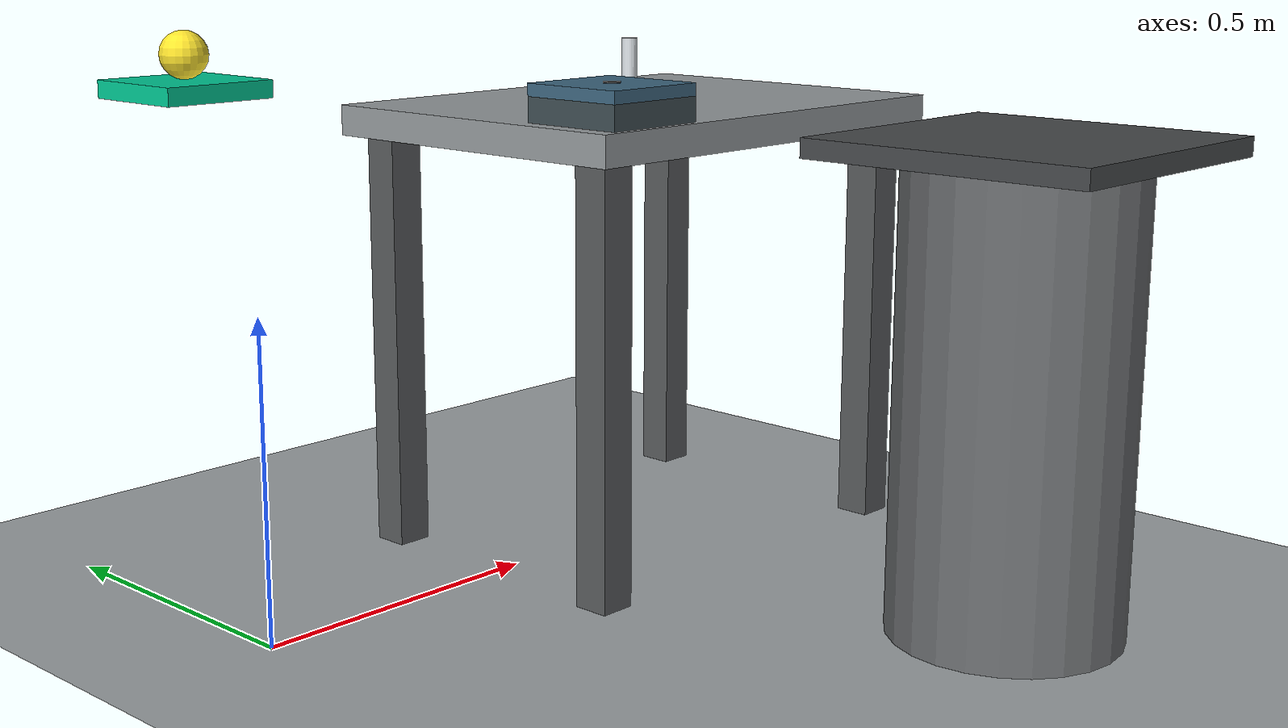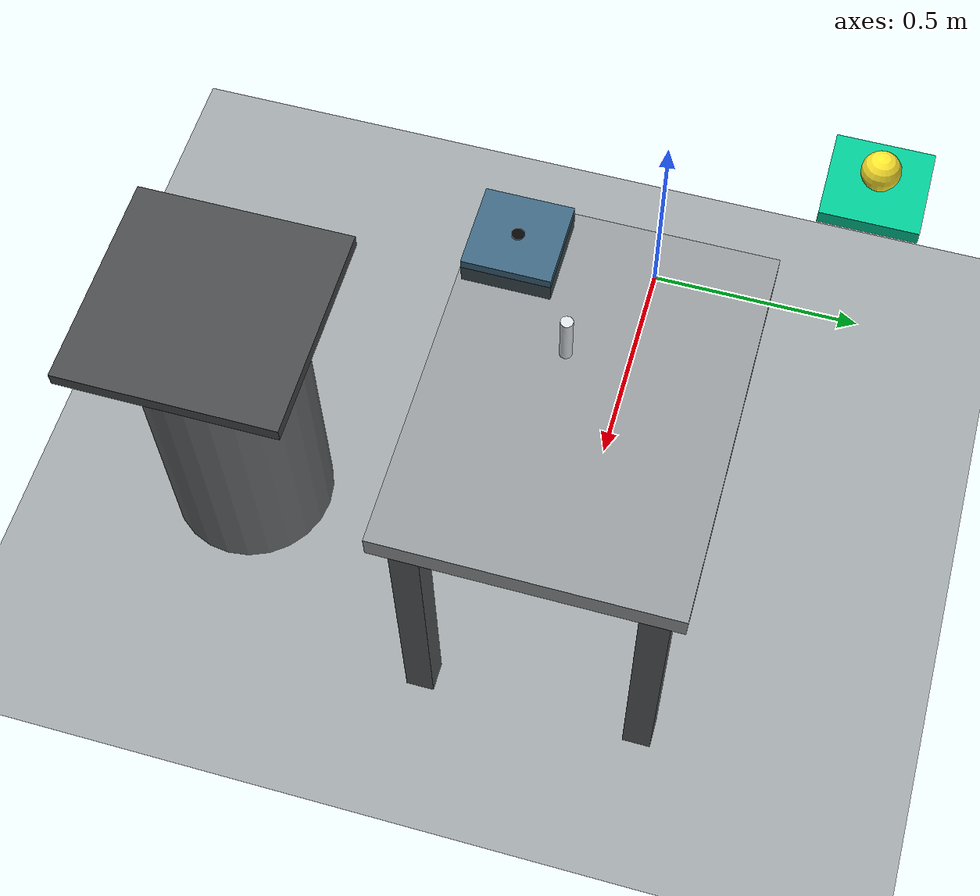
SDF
<?xml version="1.0"?>
<sdf version="1.9">
  <world name="peg_in_hole_contact_validation_world">
    <physics name="1ms" type="ignored">
      <max_step_size>0.001</max_step_size>
      <real_time_factor>1.0</real_time_factor>
      <real_time_update_rate>1000</real_time_update_rate>
    </physics>

    <plugin name="gz::sim::systems::Physics" filename="ignition-gazebo-physics-system"/>
    <plugin name="gz::sim::systems::UserCommands" filename="ignition-gazebo-user-commands-system"/>
    <plugin name="gz::sim::systems::SceneBroadcaster" filename="ignition-gazebo-scene-broadcaster-system"/>
    <plugin name="gz::sim::systems::Contact" filename="ignition-gazebo-contact-system"/>

    <gravity>0 0 -9.81</gravity>
    <magnetic_field>6.0e-6 2.3e-5 -4.2e-5</magnetic_field>
    <atmosphere type="adiabatic"/>

    <scene>
      <ambient>0.45 0.45 0.45 1</ambient>
      <background>0.72 0.74 0.76 1</background>
      <shadows>true</shadows>
    </scene>

    <model name="ground_plane">
      <static>true</static>
      <link name="link">
        <collision name="collision">
          <geometry><plane><normal>0 0 1</normal><size>20 20</size></plane></geometry>
        </collision>
        <visual name="visual">
          <geometry><plane><normal>0 0 1</normal><size>20 20</size></plane></geometry>
          <material>
            <ambient>0.55 0.57 0.58 1</ambient>
            <diffuse>0.62 0.64 0.65 1</diffuse>
          </material>
        </visual>
      </link>
    </model>

    <include>
      <name>work_table</name>
      <uri>model://work_table</uri>
      <pose>0.80 0 0 0 0 0</pose>
    </include>

    <!-- Static 0.75 m pedestal under the KUKA base for the research baseline. -->
    <include>
      <name>robot_pedestal</name>
      <uri>model://robot_pedestal</uri>
      <pose>0.80 -0.75 0.0 0 0 0</pose>
    </include>

    <!-- Fixture base sits on the 0.75 m table surface and is 40 mm tall. -->
    <include>
      <name>hole_fixture</name>
      <uri>model://hole_fixture</uri>
      <pose>0.52 -0.20 0.75 0 0 0</pose>
    </include>

    <!-- Target plate sits on top of the fixture: z=0.79 m bottom, z=0.81 m top. -->
    <include>
      <name>target_plate</name>
      <uri>model://target_plate</uri>
      <pose>0.52 -0.20 0.79 0 0 0</pose>
    </include>

    <!-- Peg origin is at the table surface; its link offset places the 110 mm peg above the table. -->
    <include>
      <name>cylindrical_peg</name>
      <uri>model://cylindrical_peg</uri>
      <pose>0.72 -0.05 0.75 0 0 0</pose>
    </include>

    <model name="contact_validation_pad">
      <static>true</static>
      <pose>0.20 0.45 0.765 0 0 0</pose>
      <link name="contact_validation_pad_link">
        <pose>0 0 0.015 0 0 0</pose>

        <collision name="contact_validation_pad_collision">
          <geometry>
            <box>
              <size>0.20 0.20 0.03</size>
            </box>
          </geometry>
          <surface>
            <contact>
              <ode>
                <kp>200000</kp>
                <kd>20</kd>
              </ode>
            </contact>
            <friction>
              <ode>
                <mu>0.8</mu>
                <mu2>0.8</mu2>
              </ode>
            </friction>
          </surface>
        </collision>

        <sensor name="contact_validation_sensor" type="contact">
          <always_on>true</always_on>
          <update_rate>100.0</update_rate>
          <topic>/gazebo/contacts/validation</topic>
          <contact>
            <collision>contact_validation_pad_collision</collision>
          </contact>
        </sensor>

        <visual name="contact_validation_pad_visual">
          <geometry>
            <box>
              <size>0.20 0.20 0.03</size>
            </box>
          </geometry>
          <material>
            <ambient>0.00 0.55 0.42 1</ambient>
            <diffuse>0.00 0.78 0.58 1</diffuse>
            <specular>0.18 0.18 0.18 1</specular>
          </material>
        </visual>
      </link>
    </model>

    <model name="contact_probe">
      <static>false</static>
      <pose>0.20 0.45 0.835 0 0 0</pose>
      <link name="contact_probe_link">
        <gravity>true</gravity>
        <inertial>
          <mass>0.10</mass>
          <inertia>
            <ixx>0.000064</ixx>
            <ixy>0</ixy>
            <ixz>0</ixz>
            <iyy>0.000064</iyy>
            <iyz>0</iyz>
            <izz>0.000064</izz>
          </inertia>
        </inertial>

        <collision name="contact_probe_collision">
          <geometry>
            <sphere>
              <radius>0.04</radius>
            </sphere>
          </geometry>
          <surface>
            <contact>
              <ode>
                <kp>200000</kp>
                <kd>20</kd>
              </ode>
            </contact>
            <friction>
              <ode>
                <mu>0.6</mu>
                <mu2>0.6</mu2>
              </ode>
            </friction>
          </surface>
        </collision>

        <visual name="contact_probe_visual">
          <geometry>
            <sphere>
              <radius>0.04</radius>
            </sphere>
          </geometry>
          <material>
            <ambient>0.95 0.84 0.10 1</ambient>
            <diffuse>1.00 0.90 0.18 1</diffuse>
            <specular>0.25 0.25 0.25 1</specular>
          </material>
        </visual>
      </link>
    </model>

    <light name="key_area_light" type="point">
      <pose>0.20 -0.60 1.80 0 0 0</pose>
      <cast_shadows>true</cast_shadows>
      <intensity>1.4</intensity>
      <diffuse>0.95 0.95 0.90 1</diffuse>
      <specular>0.35 0.35 0.35 1</specular>
      <attenuation>
        <range>5.0</range>
        <constant>0.6</constant>
        <linear>0.15</linear>
        <quadratic>0.02</quadratic>
      </attenuation>
    </light>

    <light name="sun" type="directional">
      <pose>0 0 10 0 0 0</pose>
      <cast_shadows>true</cast_shadows>
      <intensity>0.8</intensity>
      <direction>-0.4 0.2 -0.9</direction>
      <diffuse>0.80 0.82 0.85 1</diffuse>
      <specular>0.20 0.20 0.20 1</specular>
    </light>
  </world>
</sdf>

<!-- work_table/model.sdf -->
<sdf version="1.9">
  <model name="work_table">
    <static>true</static>
    <link name="table_link">
      <!-- Research-cell bench: 0.80 m x 0.60 m top, 0.05 m thick, with a 0.75 m work surface. -->
      <collision name="table_collision">
        <pose>0 0 0.725 0 0 0</pose>
        <geometry><box><size>0.80 0.60 0.05</size></box></geometry>
        <surface>
          <friction><ode><mu>0.8</mu><mu2>0.8</mu2></ode></friction>
        </surface>
      </collision>
      <visual name="tabletop_visual">
        <pose>0 0 0.725 0 0 0</pose>
        <geometry><box><size>0.80 0.60 0.05</size></box></geometry>
        <material>
          <ambient>0.45 0.47 0.48 1</ambient>
          <diffuse>0.58 0.60 0.61 1</diffuse>
          <specular>0.15 0.15 0.15 1</specular>
        </material>
      </visual>

      <collision name="leg_front_left_collision">
        <pose>0.34 0.24 0.35 0 0 0</pose>
        <geometry><box><size>0.06 0.06 0.70</size></box></geometry>
      </collision>
      <visual name="leg_front_left_visual">
        <pose>0.34 0.24 0.35 0 0 0</pose>
        <geometry><box><size>0.06 0.06 0.70</size></box></geometry>
        <material><ambient>0.28 0.29 0.30 1</ambient><diffuse>0.34 0.35 0.36 1</diffuse></material>
      </visual>

      <collision name="leg_front_right_collision">
        <pose>0.34 -0.24 0.35 0 0 0</pose>
        <geometry><box><size>0.06 0.06 0.70</size></box></geometry>
      </collision>
      <visual name="leg_front_right_visual">
        <pose>0.34 -0.24 0.35 0 0 0</pose>
        <geometry><box><size>0.06 0.06 0.70</size></box></geometry>
        <material><ambient>0.28 0.29 0.30 1</ambient><diffuse>0.34 0.35 0.36 1</diffuse></material>
      </visual>

      <collision name="leg_rear_left_collision">
        <pose>-0.34 0.24 0.35 0 0 0</pose>
        <geometry><box><size>0.06 0.06 0.70</size></box></geometry>
      </collision>
      <visual name="leg_rear_left_visual">
        <pose>-0.34 0.24 0.35 0 0 0</pose>
        <geometry><box><size>0.06 0.06 0.70</size></box></geometry>
        <material><ambient>0.28 0.29 0.30 1</ambient><diffuse>0.34 0.35 0.36 1</diffuse></material>
      </visual>

      <collision name="leg_rear_right_collision">
        <pose>-0.34 -0.24 0.35 0 0 0</pose>
        <geometry><box><size>0.06 0.06 0.70</size></box></geometry>
      </collision>
      <visual name="leg_rear_right_visual">
        <pose>-0.34 -0.24 0.35 0 0 0</pose>
        <geometry><box><size>0.06 0.06 0.70</size></box></geometry>
        <material><ambient>0.28 0.29 0.30 1</ambient><diffuse>0.34 0.35 0.36 1</diffuse></material>
      </visual>
    </link>
  </model>
</sdf>

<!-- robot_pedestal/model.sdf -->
<sdf version="1.9">
  <model name="robot_pedestal">
    <static>true</static>
    <link name="pedestal_link">
      <!-- 0.75 m static stand: its top supports the KUKA base at table-surface height. -->
      <collision name="column_collision">
        <pose>0 0 0.36 0 0 0</pose>
        <geometry>
          <cylinder>
            <radius>0.18</radius>
            <length>0.72</length>
          </cylinder>
        </geometry>
        <surface>
          <friction><ode><mu>0.9</mu><mu2>0.9</mu2></ode></friction>
        </surface>
      </collision>
      <visual name="column_visual">
        <pose>0 0 0.36 0 0 0</pose>
        <geometry>
          <cylinder>
            <radius>0.18</radius>
            <length>0.72</length>
          </cylinder>
        </geometry>
        <material>
          <ambient>0.30 0.31 0.32 1</ambient>
          <diffuse>0.42 0.43 0.44 1</diffuse>
          <specular>0.20 0.20 0.20 1</specular>
        </material>
      </visual>

      <collision name="top_plate_collision">
        <pose>0 0 0.735 0 0 0</pose>
        <geometry><box><size>0.46 0.46 0.03</size></box></geometry>
      </collision>
      <visual name="top_plate_visual">
        <pose>0 0 0.735 0 0 0</pose>
        <geometry><box><size>0.46 0.46 0.03</size></box></geometry>
        <material>
          <ambient>0.20 0.21 0.22 1</ambient>
          <diffuse>0.28 0.29 0.30 1</diffuse>
          <specular>0.25 0.25 0.25 1</specular>
        </material>
      </visual>
    </link>
  </model>
</sdf>

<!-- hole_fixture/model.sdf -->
<sdf version="1.9">
  <model name="hole_fixture">
    <static>true</static>
    <link name="fixture_link">
      <!-- Low 180 mm square nest placed directly on the table; the central opening clears the 27 mm hole marker. -->
      <pose>0 0 0.02 0 0 0</pose>
      <collision name="hole_fixture_collision">
        <pose>0 0.054 0 0 0 0</pose>
        <geometry><box><size>0.18 0.072 0.04</size></box></geometry>
      </collision>
      <collision name="fixture_rear_collision">
        <pose>0 -0.054 0 0 0 0</pose>
        <geometry><box><size>0.18 0.072 0.04</size></box></geometry>
      </collision>
      <collision name="fixture_left_collision">
        <pose>-0.054 0 0 0 0 0</pose>
        <geometry><box><size>0.072 0.036 0.04</size></box></geometry>
      </collision>
      <collision name="fixture_right_collision">
        <pose>0.054 0 0 0 0 0</pose>
        <geometry><box><size>0.072 0.036 0.04</size></box></geometry>
      </collision>
      <sensor name="hole_contact_sensor" type="contact">
        <always_on>true</always_on>
        <update_rate>100.0</update_rate>
        <topic>/gazebo/contacts/hole</topic>
        <contact>
          <collision>hole_fixture_collision</collision>
          <collision>fixture_rear_collision</collision>
          <collision>fixture_left_collision</collision>
          <collision>fixture_right_collision</collision>
        </contact>
      </sensor>
      <visual name="fixture_visual">
        <geometry><box><size>0.18 0.18 0.04</size></box></geometry>
        <material>
          <ambient>0.18 0.22 0.24 1</ambient>
          <diffuse>0.24 0.30 0.32 1</diffuse>
          <specular>0.20 0.22 0.22 1</specular>
        </material>
      </visual>
      <visual name="fixture_socket_visual">
        <pose>0 0 0.021 0 0 0</pose>
        <geometry><cylinder><radius>0.0135</radius><length>0.004</length></cylinder></geometry>
        <material>
          <ambient>0.02 0.02 0.02 1</ambient>
          <diffuse>0.03 0.03 0.03 1</diffuse>
        </material>
      </visual>
    </link>
  </model>
</sdf>

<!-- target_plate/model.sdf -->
<sdf version="1.9">
  <model name="target_plate">
    <static>true</static>
    <link name="plate_link">
      <!-- 180 mm square, 20 mm thick target plate with a 27 mm nominal hole for a 25 mm peg. -->
      <pose>0 0 0.01 0 0 0</pose>

      <collision name="target_plate_collision">
        <pose>0 0.054 0 0 0 0</pose>
        <geometry><box><size>0.18 0.072 0.02</size></box></geometry>
      </collision>
      <collision name="plate_rear_collision">
        <pose>0 -0.054 0 0 0 0</pose>
        <geometry><box><size>0.18 0.072 0.02</size></box></geometry>
      </collision>
      <collision name="plate_left_collision">
        <pose>-0.054 0 0 0 0 0</pose>
        <geometry><box><size>0.072 0.036 0.02</size></box></geometry>
      </collision>
      <collision name="plate_right_collision">
        <pose>0.054 0 0 0 0 0</pose>
        <geometry><box><size>0.072 0.036 0.02</size></box></geometry>
      </collision>
      <sensor name="target_contact_sensor" type="contact">
        <always_on>true</always_on>
        <update_rate>100.0</update_rate>
        <topic>/gazebo/contacts/target</topic>
        <contact>
          <collision>target_plate_collision</collision>
          <collision>plate_rear_collision</collision>
          <collision>plate_left_collision</collision>
          <collision>plate_right_collision</collision>
        </contact>
      </sensor>

      <visual name="plate_visual">
        <geometry><box><size>0.18 0.18 0.02</size></box></geometry>
        <material>
          <ambient>0.18 0.28 0.36 1</ambient>
          <diffuse>0.24 0.40 0.50 1</diffuse>
          <specular>0.25 0.25 0.25 1</specular>
        </material>
      </visual>
      <visual name="hole_opening_visual">
        <pose>0 0 0.0105 0 0 0</pose>
        <geometry><cylinder><radius>0.0135</radius><length>0.003</length></cylinder></geometry>
        <material>
          <ambient>0.01 0.01 0.01 1</ambient>
          <diffuse>0.02 0.02 0.02 1</diffuse>
        </material>
      </visual>
    </link>
  </model>
</sdf>

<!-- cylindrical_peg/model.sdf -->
<sdf version="1.9">
  <model name="cylindrical_peg">
    <static>false</static>
    <link name="peg_link">
      <!-- 25 mm diameter, 110 mm long aluminum-class peg for small-part insertion studies. -->
      <pose>0 0 0.055 0 0 0</pose>
      <inertial>
        <mass>0.15</mass>
        <inertia>
          <ixx>0.000157</ixx><ixy>0</ixy><ixz>0</ixz>
          <iyy>0.000157</iyy><iyz>0</iyz><izz>0.0000117</izz>
        </inertia>
      </inertial>
      <collision name="peg_collision">
        <geometry><cylinder><radius>0.0125</radius><length>0.11</length></cylinder></geometry>
        <surface>
          <friction><ode><mu>0.35</mu><mu2>0.35</mu2></ode></friction>
          <contact><ode><kp>1000000</kp><kd>10</kd></ode></contact>
        </surface>
      </collision>
      <sensor name="peg_contact_sensor" type="contact">
        <always_on>true</always_on>
        <update_rate>100.0</update_rate>
        <topic>/gazebo/contacts/peg</topic>
        <contact>
          <collision>peg_collision</collision>
        </contact>
      </sensor>
      <visual name="peg_visual">
        <geometry><cylinder><radius>0.0125</radius><length>0.11</length></cylinder></geometry>
        <material>
          <ambient>0.70 0.72 0.74 1</ambient>
          <diffuse>0.86 0.88 0.90 1</diffuse>
          <specular>0.45 0.45 0.45 1</specular>
        </material>
      </visual>
    </link>
  </model>
</sdf>
